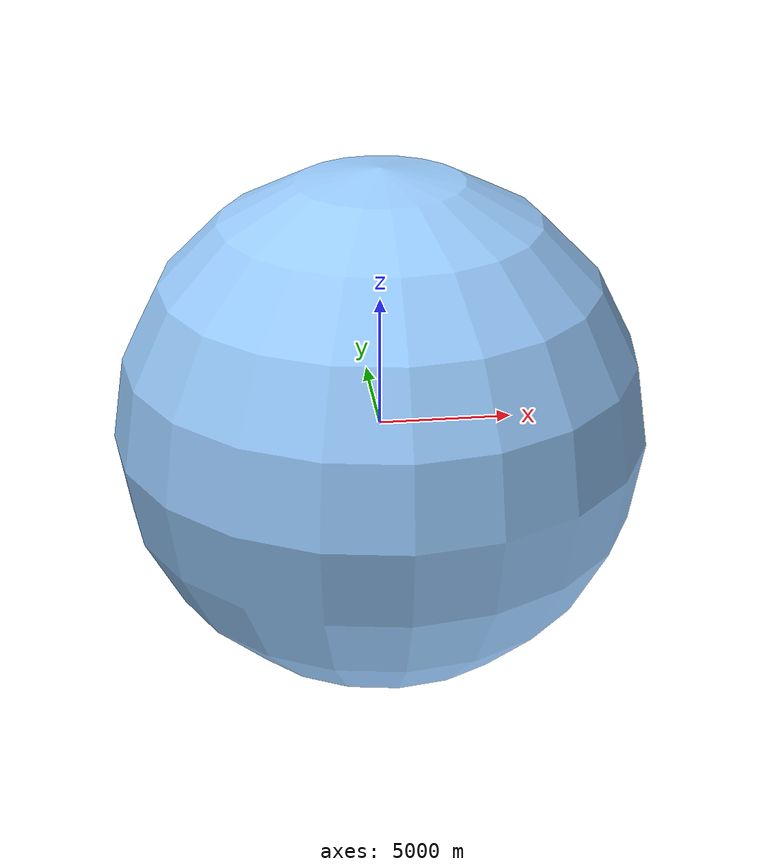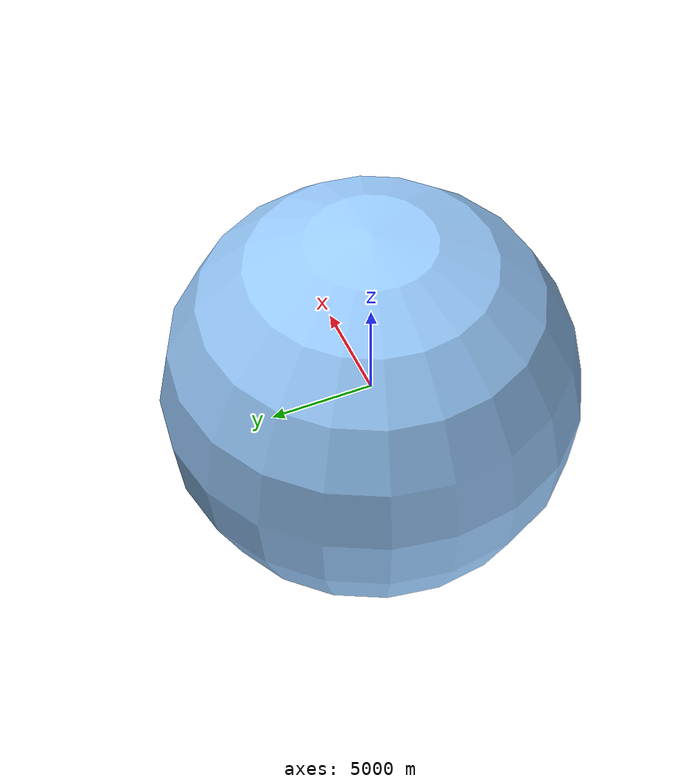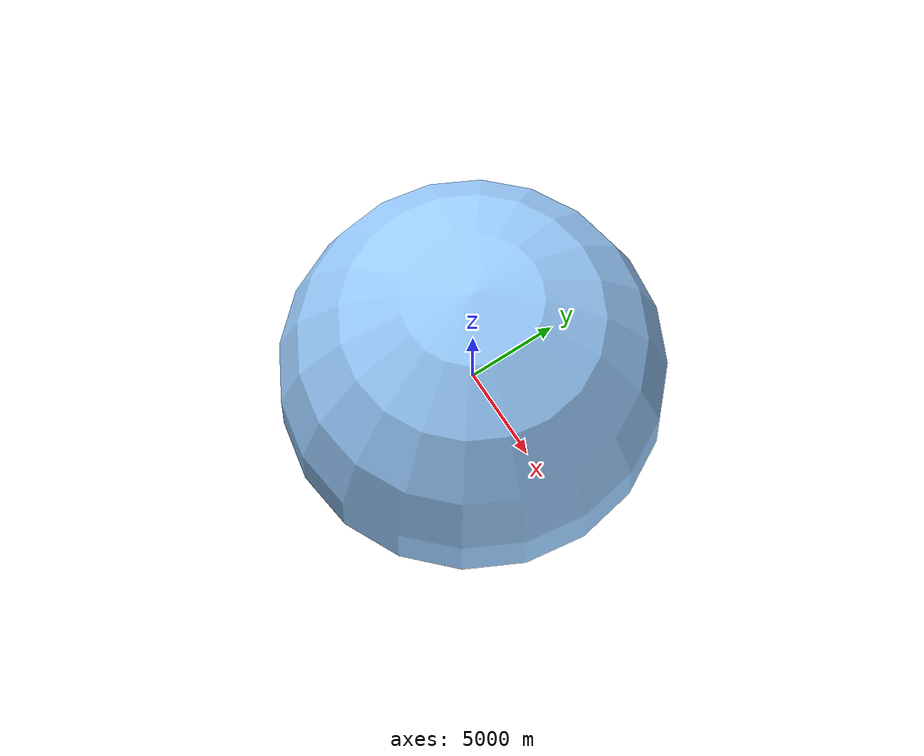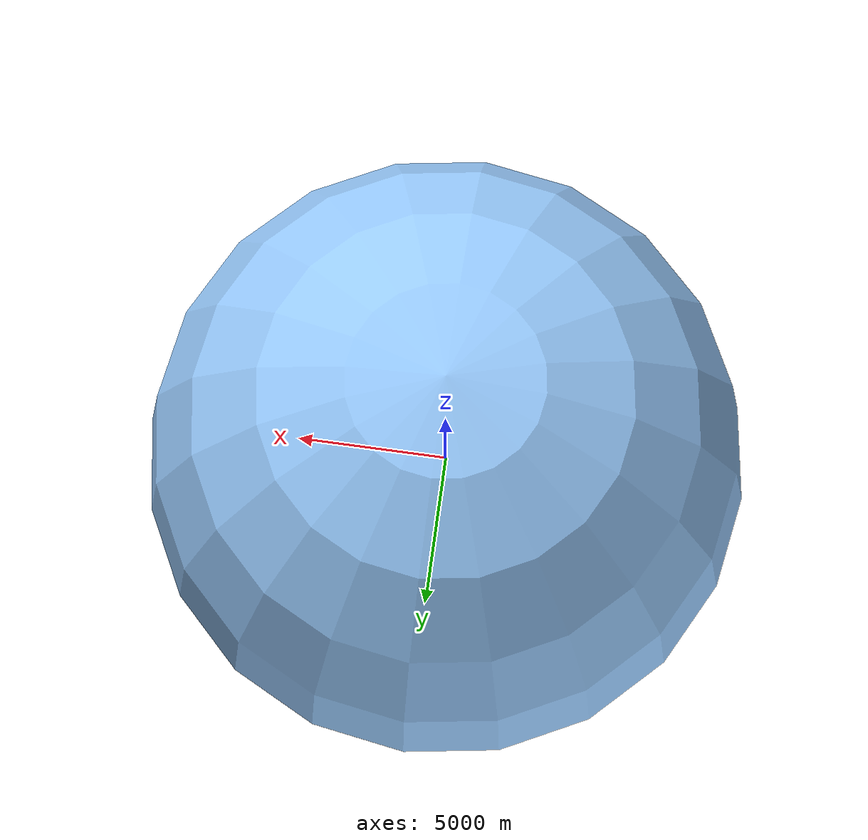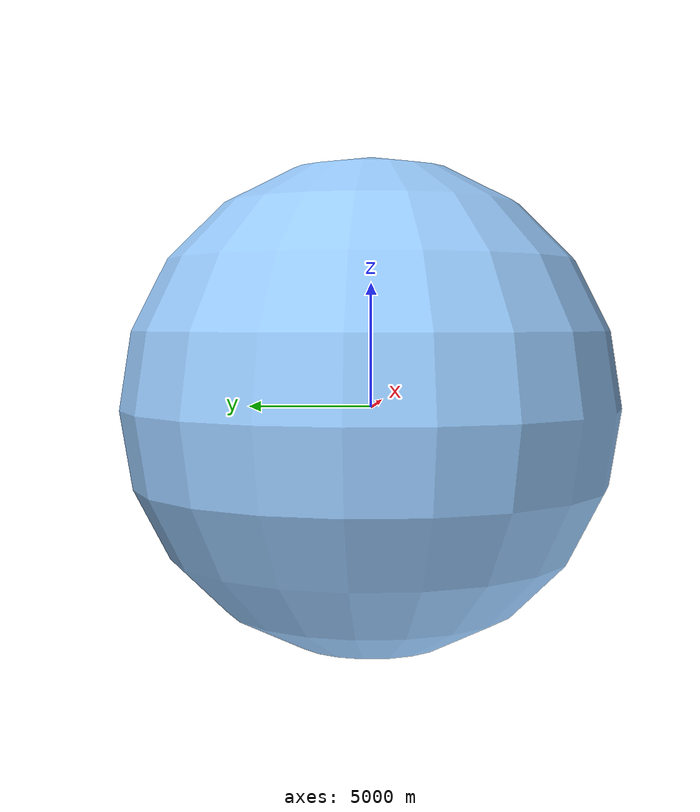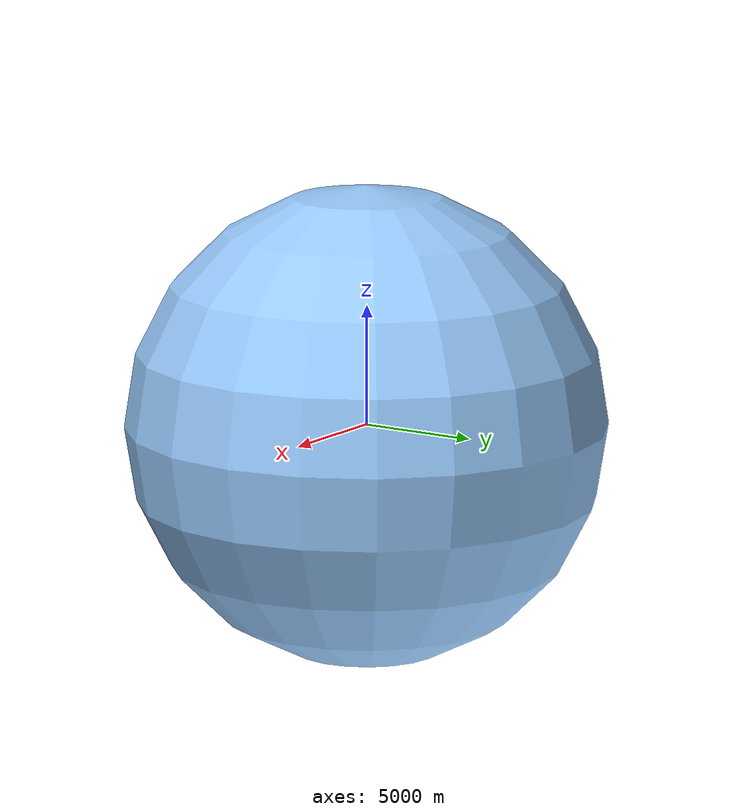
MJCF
<mujoco model="tintin_landing">
  <!-- ===== Visual / Render ===== -->
  <visual>
    <map znear="0.01"/>
    <quality shadowsize="4096"/>
    <headlight/>
  </visual>

  <!-- ===== Physics ===== -->
  <option gravity="0 0 -9.81"/>

  <!-- ===== Assets ===== -->
  <asset>
    <!-- Rocket mesh -->
    <mesh name="rocket_mesh" file="rocket.stl"/>

    <!-- Floor checker -->
    <texture name="checker" type="2d" builtin="checker" width="512" height="512"
             rgb1="0.2 0.3 0.4" rgb2="0.1 0.1 0.1"/>
    <material name="mat_checker" texture="checker" reflectance="0.3" shininess="1" specular="1" texrepeat="20 20"/>

    <!-- Sky dome -->
    <material name="sky_blue" rgba="0.6 0.8 1.0 1.0"/>

    <!-- Flame material (glow + slight transparency) -->
    <material name="mat_flame" rgba="1.0 0.5 0.0 0.9" emission="2.5" specular="0" shininess="0"/>
  </asset>

  <!-- ===== World ===== -->
  <worldbody>
    <!-- Ground + sky -->
    <geom type="plane" size="1000 1000 0.1" pos="0 0 -32.5" material="mat_checker"/>
    <geom type="sphere" size="10000" pos="0 0 0" material="sky_blue" contype="0" conaffinity="0" group="1"/>

    <!-- Light + camera -->
    <light pos="0 0 5" dir="0 0 -1" castshadow="true" directional="true"/>
    <camera name="default_cam" mode="fixed" pos="0 -731.2 408.3" euler="29.18 0 90.5"/>

    <!-- ===== Rocket (free body) ===== -->
    <body name="rocket" pos="0 0 100">
      <joint name="root" type="free"/>
      <geom type="mesh" mesh="rocket_mesh" rgba="0.8 0.2 0.2 1"/>
      <!-- Nozzle site along -Z (down) -->
      <site name="nozzle_site" pos="0 0 -10" size="0.02" rgba="0 1 0 1"/>

      <!-- Flame attached to rocket so it follows pose/orientation -->
      <body name="flame" pos="0 0 0" quat="1 0 0 0">
        <geom name="flame_geom" type="capsule" size="2.0 20." pos="0 0 0" material="mat_flame"
              contype="0" conaffinity="0" group="3" priority="1"/>
        <light name="flame_light" pos="0 0 2" dir="0 0 1" castshadow="true"
               diffuse="1.0 0.95 0.4" ambient="0.5 0.3 0.2" specular="0.2 0.2 0.2"
               cutoff="80" exponent="8" attenuation="0.1 0.005 0.0001"/>
      </body>
    </body>

    <!-- (Optional) tracker -->
    <body name="tracker" pos="0 0 100">
      <geom type="sphere" size="0.05" rgba="0 1 0 1"/>
    </body>
  </worldbody>
</mujoco>
